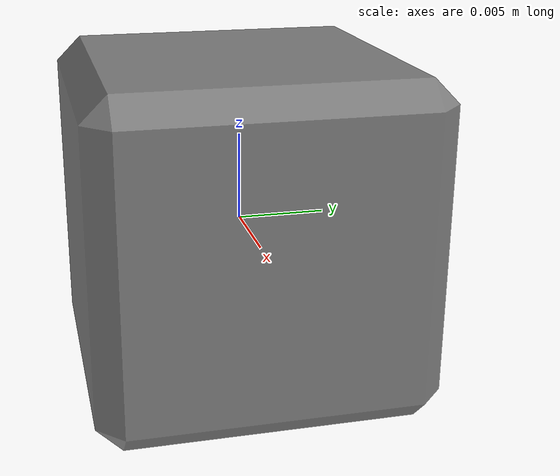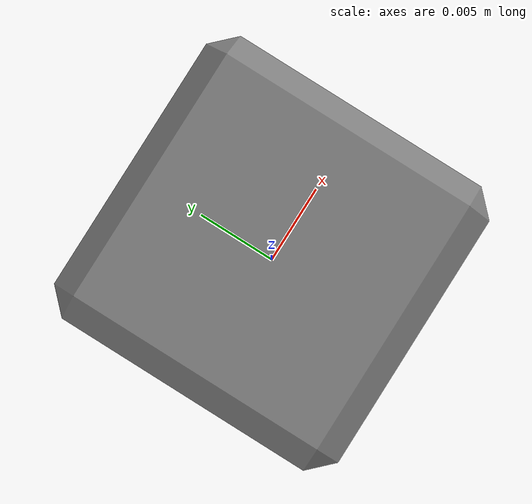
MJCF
<mujoco model="cubelet_with_colors">
  <default>
    <default class="visual">
      <geom group="2" type="mesh" contype="0" conaffinity="0"/>
    </default>
    <default class="collision">
      <geom group="3" type="mesh"/>
    </default>
  </default>
  <asset>
    <mesh file="cubelet_with_colors.obj"/>
  </asset>
  <worldbody>
    <body name="cubelet_with_colors">
      <geom mesh="cubelet_with_colors" class="visual"/>
      <geom mesh="cubelet_with_colors" class="collision"/>
    </body>
  </worldbody>
</mujoco>
